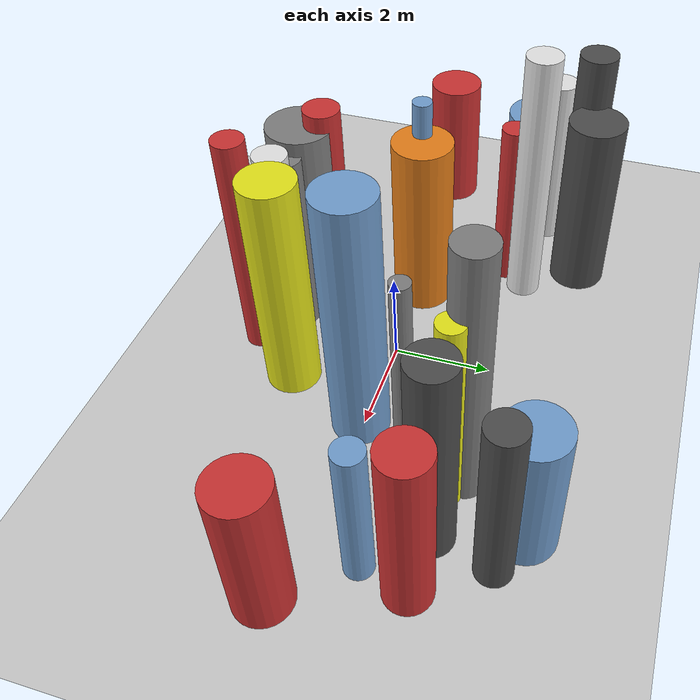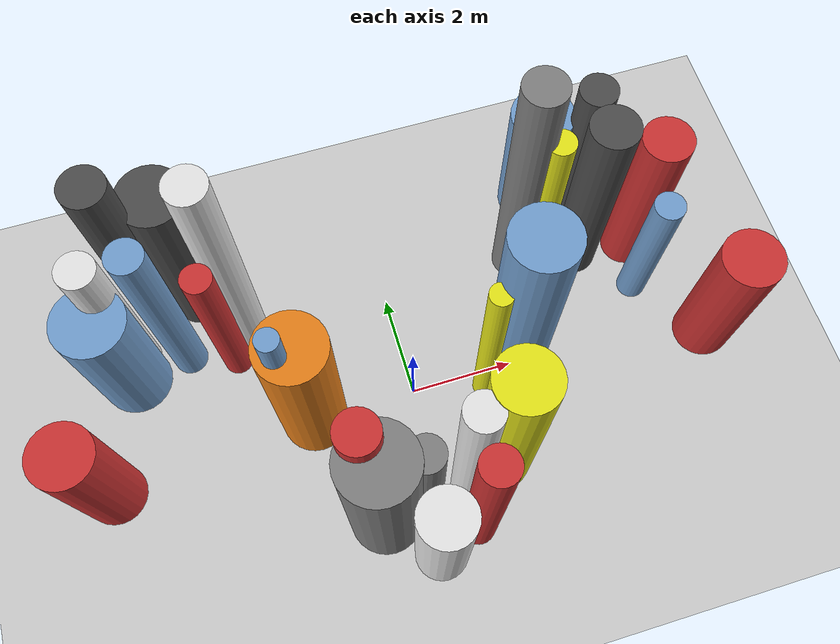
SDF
<?xml version='1.0'?>
<sdf version='1.6'>
  <world name='routeA_rl_v1__dense_recovery__rl_train__s_turn_multi_obstacle__000098'>
    <!-- Sun light -->
    <light name='sun' type='directional'>
      <cast_shadows>1</cast_shadows>
      <pose>0 0 10 0 0 0</pose>
      <diffuse>0.8 0.8 0.8 1</diffuse>
      <specular>0.2 0.2 0.2 1</specular>
      <attenuation>
        <range>1000</range>
        <constant>0.9</constant>
        <linear>0.01</linear>
        <quadratic>0.001</quadratic>
      </attenuation>
      <direction>-0.5 0.1 -0.9</direction>
    </light>

    <!-- Ground plane -->
    <model name='ground_plane'>
      <static>1</static>
      <link name='link'>
        <collision name='collision'>
          <geometry>
            <plane>
              <normal>0 0 1</normal>
              <size>100 100</size>
            </plane>
          </geometry>
          <surface>
            <contact>
              <collide_bitmask>65535</collide_bitmask>
              <ode/>
            </contact>
            <friction>
              <ode>
                <mu>100</mu>
                <mu2>50</mu2>
              </ode>
              <torsional><ode/></torsional>
            </friction>
            <bounce/>
          </surface>
          <max_contacts>10</max_contacts>
        </collision>
        <visual name='visual'>
          <cast_shadows>0</cast_shadows>
          <geometry>
            <plane>
              <normal>0 0 1</normal>
              <size>100 100</size>
            </plane>
          </geometry>
          <material>
            <script>
              <uri>file://media/materials/scripts/gazebo.material</uri>
              <n>Gazebo/Grey</n>
            </script>
          </material>
        </visual>
      </link>
    </model>

    <!-- Environment -->
    <magnetic_field>6e-06 2.3e-05 -4.2e-05</magnetic_field>
    <atmosphere type='adiabatic'/>
    <physics name='default_physics' default='0' type='ode'>
      <gravity>0 0 -9.8</gravity>
      <max_step_size>0.004</max_step_size>
      <real_time_factor>1</real_time_factor>
      <real_time_update_rate>250</real_time_update_rate>
    </physics>
    <scene>
      <ambient>0.4 0.4 0.4 1</ambient>
      <background>0.7 0.7 0.7 1</background>
      <shadows>1</shadows>
    </scene>
    <wind/>
    <spherical_coordinates>
      <surface_model>EARTH_WGS84</surface_model>
      <latitude_deg>0</latitude_deg>
      <longitude_deg>0</longitude_deg>
      <elevation>0</elevation>
      <heading_deg>0</heading_deg>
    </spherical_coordinates>

    <!-- ============ OBSTACLES (28) ============ -->
    <model name='s_turn_obs_0'>
      <static>1</static>
      <link name='link'>
        <visual name='visual'>
          <geometry>
            <cylinder>
              <radius>0.5829</radius>
              <length>3.0410</length>
            </cylinder>
          </geometry>
          <material>
            <script>
              <n>Gazebo/Red</n>
              <uri>file://media/materials/scripts/gazebo.material</uri>
            </script>
            <ambient>0.8 0.2 0.2 1</ambient>
          </material>
        </visual>
        <collision name='collision'>
          <geometry>
            <cylinder>
              <radius>0.5829</radius>
              <length>3.0410</length>
            </cylinder>
          </geometry>
          <max_contacts>10</max_contacts>
          <surface>
            <contact><ode/></contact>
            <bounce/>
            <friction>
              <ode><mu>1</mu><mu2>1</mu2></ode>
              <torsional><ode/></torsional>
            </friction>
          </surface>
        </collision>
      </link>
      <pose>-6.0000 -0.3575 1.5205 0 0 0.0000</pose>
    </model>

    <model name='s_turn_obs_1'>
      <static>1</static>
      <link name='link'>
        <visual name='visual'>
          <geometry>
            <cylinder>
              <radius>0.6746</radius>
              <length>3.0815</length>
            </cylinder>
          </geometry>
          <material>
            <script>
              <n>Gazebo/Blue</n>
              <uri>file://media/materials/scripts/gazebo.material</uri>
            </script>
            <ambient>0.447 0.624 0.812 1</ambient>
          </material>
        </visual>
        <collision name='collision'>
          <geometry>
            <cylinder>
              <radius>0.6746</radius>
              <length>3.0815</length>
            </cylinder>
          </geometry>
          <max_contacts>10</max_contacts>
          <surface>
            <contact><ode/></contact>
            <bounce/>
            <friction>
              <ode><mu>1</mu><mu2>1</mu2></ode>
              <torsional><ode/></torsional>
            </friction>
          </surface>
        </collision>
      </link>
      <pose>-5.2000 1.7980 1.5407 0 0 0.0000</pose>
    </model>

    <model name='s_turn_obs_2'>
      <static>1</static>
      <link name='link'>
        <visual name='visual'>
          <geometry>
            <cylinder>
              <radius>0.4011</radius>
              <length>5.1341</length>
            </cylinder>
          </geometry>
          <material>
            <script>
              <n>Gazebo/DarkGrey</n>
              <uri>file://media/materials/scripts/gazebo.material</uri>
            </script>
            <ambient>0.3 0.3 0.3 1</ambient>
          </material>
        </visual>
        <collision name='collision'>
          <geometry>
            <cylinder>
              <radius>0.4011</radius>
              <length>5.1341</length>
            </cylinder>
          </geometry>
          <max_contacts>10</max_contacts>
          <surface>
            <contact><ode/></contact>
            <bounce/>
            <friction>
              <ode><mu>1</mu><mu2>1</mu2></ode>
              <torsional><ode/></torsional>
            </friction>
          </surface>
        </collision>
      </link>
      <pose>-4.4000 3.0204 2.5671 0 0 0.0000</pose>
    </model>

    <model name='s_turn_obs_3'>
      <static>1</static>
      <link name='link'>
        <visual name='visual'>
          <geometry>
            <cylinder>
              <radius>0.6037</radius>
              <length>4.0837</length>
            </cylinder>
          </geometry>
          <material>
            <script>
              <n>Gazebo/DarkGrey</n>
              <uri>file://media/materials/scripts/gazebo.material</uri>
            </script>
            <ambient>0.3 0.3 0.3 1</ambient>
          </material>
        </visual>
        <collision name='collision'>
          <geometry>
            <cylinder>
              <radius>0.6037</radius>
              <length>4.0837</length>
            </cylinder>
          </geometry>
          <max_contacts>10</max_contacts>
          <surface>
            <contact><ode/></contact>
            <bounce/>
            <friction>
              <ode><mu>1</mu><mu2>1</mu2></ode>
              <torsional><ode/></torsional>
            </friction>
          </surface>
        </collision>
      </link>
      <pose>-3.6000 3.2511 2.0418 0 0 0.0000</pose>
    </model>

    <model name='s_turn_obs_4'>
      <static>1</static>
      <link name='link'>
        <visual name='visual'>
          <geometry>
            <cylinder>
              <radius>0.3648</radius>
              <length>5.8114</length>
            </cylinder>
          </geometry>
          <material>
            <script>
              <n>Gazebo/White</n>
              <uri>file://media/materials/scripts/gazebo.material</uri>
            </script>
            <ambient>0.9 0.9 0.9 1</ambient>
          </material>
        </visual>
        <collision name='collision'>
          <geometry>
            <cylinder>
              <radius>0.3648</radius>
              <length>5.8114</length>
            </cylinder>
          </geometry>
          <max_contacts>10</max_contacts>
          <surface>
            <contact><ode/></contact>
            <bounce/>
            <friction>
              <ode><mu>1</mu><mu2>1</mu2></ode>
              <torsional><ode/></torsional>
            </friction>
          </surface>
        </collision>
      </link>
      <pose>-2.8000 2.1491 2.9057 0 0 0.0000</pose>
    </model>

    <model name='s_turn_obs_5'>
      <static>1</static>
      <link name='link'>
        <visual name='visual'>
          <geometry>
            <cylinder>
              <radius>0.6403</radius>
              <length>4.0077</length>
            </cylinder>
          </geometry>
          <material>
            <script>
              <n>Gazebo/Orange</n>
              <uri>file://media/materials/scripts/gazebo.material</uri>
            </script>
            <ambient>0.9 0.5 0.1 1</ambient>
          </material>
        </visual>
        <collision name='collision'>
          <geometry>
            <cylinder>
              <radius>0.6403</radius>
              <length>4.0077</length>
            </cylinder>
          </geometry>
          <max_contacts>10</max_contacts>
          <surface>
            <contact><ode/></contact>
            <bounce/>
            <friction>
              <ode><mu>1</mu><mu2>1</mu2></ode>
              <torsional><ode/></torsional>
            </friction>
          </surface>
        </collision>
      </link>
      <pose>-2.0000 -0.0030 2.0038 0 0 0.0000</pose>
    </model>

    <model name='s_turn_obs_6'>
      <static>1</static>
      <link name='link'>
        <visual name='visual'>
          <geometry>
            <cylinder>
              <radius>0.6826</radius>
              <length>4.4860</length>
            </cylinder>
          </geometry>
          <material>
            <script>
              <n>Gazebo/Grey</n>
              <uri>file://media/materials/scripts/gazebo.material</uri>
            </script>
            <ambient>0.5 0.5 0.5 1</ambient>
          </material>
        </visual>
        <collision name='collision'>
          <geometry>
            <cylinder>
              <radius>0.6826</radius>
              <length>4.4860</length>
            </cylinder>
          </geometry>
          <max_contacts>10</max_contacts>
          <surface>
            <contact><ode/></contact>
            <bounce/>
            <friction>
              <ode><mu>1</mu><mu2>1</mu2></ode>
              <torsional><ode/></torsional>
            </friction>
          </surface>
        </collision>
      </link>
      <pose>-1.2000 -2.2628 2.2430 0 0 0.0000</pose>
    </model>

    <model name='s_turn_obs_7'>
      <static>1</static>
      <link name='link'>
        <visual name='visual'>
          <geometry>
            <cylinder>
              <radius>0.5009</radius>
              <length>3.7713</length>
            </cylinder>
          </geometry>
          <material>
            <script>
              <n>Gazebo/White</n>
              <uri>file://media/materials/scripts/gazebo.material</uri>
            </script>
            <ambient>0.9 0.9 0.9 1</ambient>
          </material>
        </visual>
        <collision name='collision'>
          <geometry>
            <cylinder>
              <radius>0.5009</radius>
              <length>3.7713</length>
            </cylinder>
          </geometry>
          <max_contacts>10</max_contacts>
          <surface>
            <contact><ode/></contact>
            <bounce/>
            <friction>
              <ode><mu>1</mu><mu2>1</mu2></ode>
              <torsional><ode/></torsional>
            </friction>
          </surface>
        </collision>
      </link>
      <pose>-0.4000 -3.1914 1.8856 0 0 0.0000</pose>
    </model>

    <model name='s_turn_obs_8'>
      <static>1</static>
      <link name='link'>
        <visual name='visual'>
          <geometry>
            <cylinder>
              <radius>0.3197</radius>
              <length>5.0509</length>
            </cylinder>
          </geometry>
          <material>
            <script>
              <n>Gazebo/Red</n>
              <uri>file://media/materials/scripts/gazebo.material</uri>
            </script>
            <ambient>0.8 0.2 0.2 1</ambient>
          </material>
        </visual>
        <collision name='collision'>
          <geometry>
            <cylinder>
              <radius>0.3197</radius>
              <length>5.0509</length>
            </cylinder>
          </geometry>
          <max_contacts>10</max_contacts>
          <surface>
            <contact><ode/></contact>
            <bounce/>
            <friction>
              <ode><mu>1</mu><mu2>1</mu2></ode>
              <torsional><ode/></torsional>
            </friction>
          </surface>
        </collision>
      </link>
      <pose>0.4000 -2.9295 2.5255 0 0 0.0000</pose>
    </model>

    <model name='s_turn_obs_9'>
      <static>1</static>
      <link name='link'>
        <visual name='visual'>
          <geometry>
            <cylinder>
              <radius>0.5548</radius>
              <length>4.9473</length>
            </cylinder>
          </geometry>
          <material>
            <script>
              <n>Gazebo/Yellow</n>
              <uri>file://media/materials/scripts/gazebo.material</uri>
            </script>
            <ambient>0.9 0.9 0.1 1</ambient>
          </material>
        </visual>
        <collision name='collision'>
          <geometry>
            <cylinder>
              <radius>0.5548</radius>
              <length>4.9473</length>
            </cylinder>
          </geometry>
          <max_contacts>10</max_contacts>
          <surface>
            <contact><ode/></contact>
            <bounce/>
            <friction>
              <ode><mu>1</mu><mu2>1</mu2></ode>
              <torsional><ode/></torsional>
            </friction>
          </surface>
        </collision>
      </link>
      <pose>1.2000 -1.8395 2.4737 0 0 0.0000</pose>
    </model>

    <model name='s_turn_obs_10'>
      <static>1</static>
      <link name='link'>
        <visual name='visual'>
          <geometry>
            <cylinder>
              <radius>0.5827</radius>
              <length>5.6476</length>
            </cylinder>
          </geometry>
          <material>
            <script>
              <n>Gazebo/Blue</n>
              <uri>file://media/materials/scripts/gazebo.material</uri>
            </script>
            <ambient>0.447 0.624 0.812 1</ambient>
          </material>
        </visual>
        <collision name='collision'>
          <geometry>
            <cylinder>
              <radius>0.5827</radius>
              <length>5.6476</length>
            </cylinder>
          </geometry>
          <max_contacts>10</max_contacts>
          <surface>
            <contact><ode/></contact>
            <bounce/>
            <friction>
              <ode><mu>1</mu><mu2>1</mu2></ode>
              <torsional><ode/></torsional>
            </friction>
          </surface>
        </collision>
      </link>
      <pose>2.0000 -0.0822 2.8238 0 0 0.0000</pose>
    </model>

    <model name='s_turn_obs_11'>
      <static>1</static>
      <link name='link'>
        <visual name='visual'>
          <geometry>
            <cylinder>
              <radius>0.3927</radius>
              <length>5.8502</length>
            </cylinder>
          </geometry>
          <material>
            <script>
              <n>Gazebo/Grey</n>
              <uri>file://media/materials/scripts/gazebo.material</uri>
            </script>
            <ambient>0.5 0.5 0.5 1</ambient>
          </material>
        </visual>
        <collision name='collision'>
          <geometry>
            <cylinder>
              <radius>0.3927</radius>
              <length>5.8502</length>
            </cylinder>
          </geometry>
          <max_contacts>10</max_contacts>
          <surface>
            <contact><ode/></contact>
            <bounce/>
            <friction>
              <ode><mu>1</mu><mu2>1</mu2></ode>
              <torsional><ode/></torsional>
            </friction>
          </surface>
        </collision>
      </link>
      <pose>2.8000 2.2364 2.9251 0 0 0.0000</pose>
    </model>

    <model name='s_turn_obs_12'>
      <static>1</static>
      <link name='link'>
        <visual name='visual'>
          <geometry>
            <cylinder>
              <radius>0.6087</radius>
              <length>3.0084</length>
            </cylinder>
          </geometry>
          <material>
            <script>
              <n>Gazebo/Blue</n>
              <uri>file://media/materials/scripts/gazebo.material</uri>
            </script>
            <ambient>0.447 0.624 0.812 1</ambient>
          </material>
        </visual>
        <collision name='collision'>
          <geometry>
            <cylinder>
              <radius>0.6087</radius>
              <length>3.0084</length>
            </cylinder>
          </geometry>
          <max_contacts>10</max_contacts>
          <surface>
            <contact><ode/></contact>
            <bounce/>
            <friction>
              <ode><mu>1</mu><mu2>1</mu2></ode>
              <torsional><ode/></torsional>
            </friction>
          </surface>
        </collision>
      </link>
      <pose>3.6000 3.5509 1.5042 0 0 0.0000</pose>
    </model>

    <model name='s_turn_obs_13'>
      <static>1</static>
      <link name='link'>
        <visual name='visual'>
          <geometry>
            <cylinder>
              <radius>0.3636</radius>
              <length>3.9297</length>
            </cylinder>
          </geometry>
          <material>
            <script>
              <n>Gazebo/DarkGrey</n>
              <uri>file://media/materials/scripts/gazebo.material</uri>
            </script>
            <ambient>0.3 0.3 0.3 1</ambient>
          </material>
        </visual>
        <collision name='collision'>
          <geometry>
            <cylinder>
              <radius>0.3636</radius>
              <length>3.9297</length>
            </cylinder>
          </geometry>
          <max_contacts>10</max_contacts>
          <surface>
            <contact><ode/></contact>
            <bounce/>
            <friction>
              <ode><mu>1</mu><mu2>1</mu2></ode>
              <torsional><ode/></torsional>
            </friction>
          </surface>
        </collision>
      </link>
      <pose>4.4000 3.1796 1.9648 0 0 0.0000</pose>
    </model>

    <model name='s_turn_obs_14'>
      <static>1</static>
      <link name='link'>
        <visual name='visual'>
          <geometry>
            <cylinder>
              <radius>0.4685</radius>
              <length>3.8984</length>
            </cylinder>
          </geometry>
          <material>
            <script>
              <n>Gazebo/Red</n>
              <uri>file://media/materials/scripts/gazebo.material</uri>
            </script>
            <ambient>0.8 0.2 0.2 1</ambient>
          </material>
        </visual>
        <collision name='collision'>
          <geometry>
            <cylinder>
              <radius>0.4685</radius>
              <length>3.8984</length>
            </cylinder>
          </geometry>
          <max_contacts>10</max_contacts>
          <surface>
            <contact><ode/></contact>
            <bounce/>
            <friction>
              <ode><mu>1</mu><mu2>1</mu2></ode>
              <torsional><ode/></torsional>
            </friction>
          </surface>
        </collision>
      </link>
      <pose>5.2000 1.8923 1.9492 0 0 0.0000</pose>
    </model>

    <model name='s_turn_obs_15'>
      <static>1</static>
      <link name='link'>
        <visual name='visual'>
          <geometry>
            <cylinder>
              <radius>0.5663</radius>
              <length>3.2559</length>
            </cylinder>
          </geometry>
          <material>
            <script>
              <n>Gazebo/Red</n>
              <uri>file://media/materials/scripts/gazebo.material</uri>
            </script>
            <ambient>0.8 0.2 0.2 1</ambient>
          </material>
        </visual>
        <collision name='collision'>
          <geometry>
            <cylinder>
              <radius>0.5663</radius>
              <length>3.2559</length>
            </cylinder>
          </geometry>
          <max_contacts>10</max_contacts>
          <surface>
            <contact><ode/></contact>
            <bounce/>
            <friction>
              <ode><mu>1</mu><mu2>1</mu2></ode>
              <torsional><ode/></torsional>
            </friction>
          </surface>
        </collision>
      </link>
      <pose>6.0000 -0.3983 1.6279 0 0 0.0000</pose>
    </model>

    <model name='s_turn_obs2_0'>
      <static>1</static>
      <link name='link'>
        <visual name='visual'>
          <geometry>
            <cylinder>
              <radius>0.3553</radius>
              <length>4.0465</length>
            </cylinder>
          </geometry>
          <material>
            <script>
              <n>Gazebo/White</n>
              <uri>file://media/materials/scripts/gazebo.material</uri>
            </script>
            <ambient>0.9 0.9 0.9 1</ambient>
          </material>
        </visual>
        <collision name='collision'>
          <geometry>
            <cylinder>
              <radius>0.3553</radius>
              <length>4.0465</length>
            </cylinder>
          </geometry>
          <max_contacts>10</max_contacts>
          <surface>
            <contact><ode/></contact>
            <bounce/>
            <friction>
              <ode><mu>1</mu><mu2>1</mu2></ode>
              <torsional><ode/></torsional>
            </friction>
          </surface>
        </collision>
      </link>
      <pose>-5.0000 2.2653 2.0232 0 0 0.0000</pose>
    </model>

    <model name='s_turn_obs2_1'>
      <static>1</static>
      <link name='link'>
        <visual name='visual'>
          <geometry>
            <cylinder>
              <radius>0.3314</radius>
              <length>4.5992</length>
            </cylinder>
          </geometry>
          <material>
            <script>
              <n>Gazebo/Blue</n>
              <uri>file://media/materials/scripts/gazebo.material</uri>
            </script>
            <ambient>0.447 0.624 0.812 1</ambient>
          </material>
        </visual>
        <collision name='collision'>
          <geometry>
            <cylinder>
              <radius>0.3314</radius>
              <length>4.5992</length>
            </cylinder>
          </geometry>
          <max_contacts>10</max_contacts>
          <surface>
            <contact><ode/></contact>
            <bounce/>
            <friction>
              <ode><mu>1</mu><mu2>1</mu2></ode>
              <torsional><ode/></torsional>
            </friction>
          </surface>
        </collision>
      </link>
      <pose>-4.0909 1.9667 2.2996 0 0 0.0000</pose>
    </model>

    <model name='s_turn_obs2_2'>
      <static>1</static>
      <link name='link'>
        <visual name='visual'>
          <geometry>
            <cylinder>
              <radius>0.2805</radius>
              <length>3.8946</length>
            </cylinder>
          </geometry>
          <material>
            <script>
              <n>Gazebo/Red</n>
              <uri>file://media/materials/scripts/gazebo.material</uri>
            </script>
            <ambient>0.8 0.2 0.2 1</ambient>
          </material>
        </visual>
        <collision name='collision'>
          <geometry>
            <cylinder>
              <radius>0.2805</radius>
              <length>3.8946</length>
            </cylinder>
          </geometry>
          <max_contacts>10</max_contacts>
          <surface>
            <contact><ode/></contact>
            <bounce/>
            <friction>
              <ode><mu>1</mu><mu2>1</mu2></ode>
              <torsional><ode/></torsional>
            </friction>
          </surface>
        </collision>
      </link>
      <pose>-3.1818 1.6379 1.9473 0 0 0.0000</pose>
    </model>

    <model name='s_turn_obs2_3'>
      <static>1</static>
      <link name='link'>
        <visual name='visual'>
          <geometry>
            <cylinder>
              <radius>0.2044</radius>
              <length>4.7498</length>
            </cylinder>
          </geometry>
          <material>
            <script>
              <n>Gazebo/Blue</n>
              <uri>file://media/materials/scripts/gazebo.material</uri>
            </script>
            <ambient>0.447 0.624 0.812 1</ambient>
          </material>
        </visual>
        <collision name='collision'>
          <geometry>
            <cylinder>
              <radius>0.2044</radius>
              <length>4.7498</length>
            </cylinder>
          </geometry>
          <max_contacts>10</max_contacts>
          <surface>
            <contact><ode/></contact>
            <bounce/>
            <friction>
              <ode><mu>1</mu><mu2>1</mu2></ode>
              <torsional><ode/></torsional>
            </friction>
          </surface>
        </collision>
      </link>
      <pose>-2.2727 -0.0864 2.3749 0 0 0.0000</pose>
    </model>

    <model name='s_turn_obs2_4'>
      <static>1</static>
      <link name='link'>
        <visual name='visual'>
          <geometry>
            <cylinder>
              <radius>0.3733</radius>
              <length>4.8320</length>
            </cylinder>
          </geometry>
          <material>
            <script>
              <n>Gazebo/Red</n>
              <uri>file://media/materials/scripts/gazebo.material</uri>
            </script>
            <ambient>0.8 0.2 0.2 1</ambient>
          </material>
        </visual>
        <collision name='collision'>
          <geometry>
            <cylinder>
              <radius>0.3733</radius>
              <length>4.8320</length>
            </cylinder>
          </geometry>
          <max_contacts>10</max_contacts>
          <surface>
            <contact><ode/></contact>
            <bounce/>
            <friction>
              <ode><mu>1</mu><mu2>1</mu2></ode>
              <torsional><ode/></torsional>
            </friction>
          </surface>
        </collision>
      </link>
      <pose>-1.3636 -1.8423 2.4160 0 0 0.0000</pose>
    </model>

    <model name='s_turn_obs2_5'>
      <static>1</static>
      <link name='link'>
        <visual name='visual'>
          <geometry>
            <cylinder>
              <radius>0.3176</radius>
              <length>4.1947</length>
            </cylinder>
          </geometry>
          <material>
            <script>
              <n>Gazebo/Grey</n>
              <uri>file://media/materials/scripts/gazebo.material</uri>
            </script>
            <ambient>0.5 0.5 0.5 1</ambient>
          </material>
        </visual>
        <collision name='collision'>
          <geometry>
            <cylinder>
              <radius>0.3176</radius>
              <length>4.1947</length>
            </cylinder>
          </geometry>
          <max_contacts>10</max_contacts>
          <surface>
            <contact><ode/></contact>
            <bounce/>
            <friction>
              <ode><mu>1</mu><mu2>1</mu2></ode>
              <torsional><ode/></torsional>
            </friction>
          </surface>
        </collision>
      </link>
      <pose>-0.4545 -2.2811 2.0973 0 0 0.0000</pose>
    </model>

    <model name='s_turn_obs2_6'>
      <static>1</static>
      <link name='link'>
        <visual name='visual'>
          <geometry>
            <cylinder>
              <radius>0.3331</radius>
              <length>4.9173</length>
            </cylinder>
          </geometry>
          <material>
            <script>
              <n>Gazebo/White</n>
              <uri>file://media/materials/scripts/gazebo.material</uri>
            </script>
            <ambient>0.9 0.9 0.9 1</ambient>
          </material>
        </visual>
        <collision name='collision'>
          <geometry>
            <cylinder>
              <radius>0.3331</radius>
              <length>4.9173</length>
            </cylinder>
          </geometry>
          <max_contacts>10</max_contacts>
          <surface>
            <contact><ode/></contact>
            <bounce/>
            <friction>
              <ode><mu>1</mu><mu2>1</mu2></ode>
              <torsional><ode/></torsional>
            </friction>
          </surface>
        </collision>
      </link>
      <pose>0.4545 -2.1029 2.4587 0 0 0.0000</pose>
    </model>

    <model name='s_turn_obs2_7'>
      <static>1</static>
      <link name='link'>
        <visual name='visual'>
          <geometry>
            <cylinder>
              <radius>0.2085</radius>
              <length>4.4652</length>
            </cylinder>
          </geometry>
          <material>
            <script>
              <n>Gazebo/Yellow</n>
              <uri>file://media/materials/scripts/gazebo.material</uri>
            </script>
            <ambient>0.9 0.9 0.1 1</ambient>
          </material>
        </visual>
        <collision name='collision'>
          <geometry>
            <cylinder>
              <radius>0.2085</radius>
              <length>4.4652</length>
            </cylinder>
          </geometry>
          <max_contacts>10</max_contacts>
          <surface>
            <contact><ode/></contact>
            <bounce/>
            <friction>
              <ode><mu>1</mu><mu2>1</mu2></ode>
              <torsional><ode/></torsional>
            </friction>
          </surface>
        </collision>
      </link>
      <pose>1.3636 -0.2802 2.2326 0 0 0.0000</pose>
    </model>

    <model name='s_turn_obs2_8'>
      <static>1</static>
      <link name='link'>
        <visual name='visual'>
          <geometry>
            <cylinder>
              <radius>0.2008</radius>
              <length>4.2395</length>
            </cylinder>
          </geometry>
          <material>
            <script>
              <n>Gazebo/Grey</n>
              <uri>file://media/materials/scripts/gazebo.material</uri>
            </script>
            <ambient>0.5 0.5 0.5 1</ambient>
          </material>
        </visual>
        <collision name='collision'>
          <geometry>
            <cylinder>
              <radius>0.2008</radius>
              <length>4.2395</length>
            </cylinder>
          </geometry>
          <max_contacts>10</max_contacts>
          <surface>
            <contact><ode/></contact>
            <bounce/>
            <friction>
              <ode><mu>1</mu><mu2>1</mu2></ode>
              <torsional><ode/></torsional>
            </friction>
          </surface>
        </collision>
      </link>
      <pose>2.2727 0.8999 2.1197 0 0 0.0000</pose>
    </model>

    <model name='s_turn_obs2_9'>
      <static>1</static>
      <link name='link'>
        <visual name='visual'>
          <geometry>
            <cylinder>
              <radius>0.2633</radius>
              <length>4.5160</length>
            </cylinder>
          </geometry>
          <material>
            <script>
              <n>Gazebo/Yellow</n>
              <uri>file://media/materials/scripts/gazebo.material</uri>
            </script>
            <ambient>0.9 0.9 0.1 1</ambient>
          </material>
        </visual>
        <collision name='collision'>
          <geometry>
            <cylinder>
              <radius>0.2633</radius>
              <length>4.5160</length>
            </cylinder>
          </geometry>
          <max_contacts>10</max_contacts>
          <surface>
            <contact><ode/></contact>
            <bounce/>
            <friction>
              <ode><mu>1</mu><mu2>1</mu2></ode>
              <torsional><ode/></torsional>
            </friction>
          </surface>
        </collision>
      </link>
      <pose>3.1818 2.0074 2.2580 0 0 0.0000</pose>
    </model>

    <model name='s_turn_obs2_10'>
      <static>1</static>
      <link name='link'>
        <visual name='visual'>
          <geometry>
            <cylinder>
              <radius>0.4471</radius>
              <length>4.6245</length>
            </cylinder>
          </geometry>
          <material>
            <script>
              <n>Gazebo/DarkGrey</n>
              <uri>file://media/materials/scripts/gazebo.material</uri>
            </script>
            <ambient>0.3 0.3 0.3 1</ambient>
          </material>
        </visual>
        <collision name='collision'>
          <geometry>
            <cylinder>
              <radius>0.4471</radius>
              <length>4.6245</length>
            </cylinder>
          </geometry>
          <max_contacts>10</max_contacts>
          <surface>
            <contact><ode/></contact>
            <bounce/>
            <friction>
              <ode><mu>1</mu><mu2>1</mu2></ode>
              <torsional><ode/></torsional>
            </friction>
          </surface>
        </collision>
      </link>
      <pose>4.0909 1.9703 2.3123 0 0 0.0000</pose>
    </model>

    <model name='s_turn_obs2_11'>
      <static>1</static>
      <link name='link'>
        <visual name='visual'>
          <geometry>
            <cylinder>
              <radius>0.2877</radius>
              <length>3.2906</length>
            </cylinder>
          </geometry>
          <material>
            <script>
              <n>Gazebo/Blue</n>
              <uri>file://media/materials/scripts/gazebo.material</uri>
            </script>
            <ambient>0.447 0.624 0.812 1</ambient>
          </material>
        </visual>
        <collision name='collision'>
          <geometry>
            <cylinder>
              <radius>0.2877</radius>
              <length>3.2906</length>
            </cylinder>
          </geometry>
          <max_contacts>10</max_contacts>
          <surface>
            <contact><ode/></contact>
            <bounce/>
            <friction>
              <ode><mu>1</mu><mu2>1</mu2></ode>
              <torsional><ode/></torsional>
            </friction>
          </surface>
        </collision>
      </link>
      <pose>5.0000 0.9443 1.6453 0 0 0.0000</pose>
    </model>

    <!-- GUI camera -->
    <gui fullscreen='0'>
      <camera name='user_camera'>
        <pose>-15 0 18 0 0.85 0.15</pose>
        <view_controller>orbit</view_controller>
        <projection_type>perspective</projection_type>
      </camera>
    </gui>
  </world>
</sdf>
